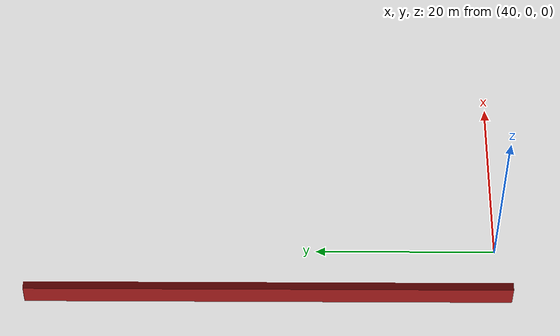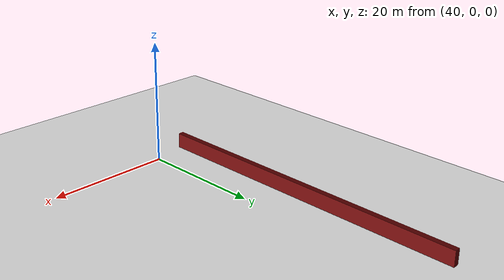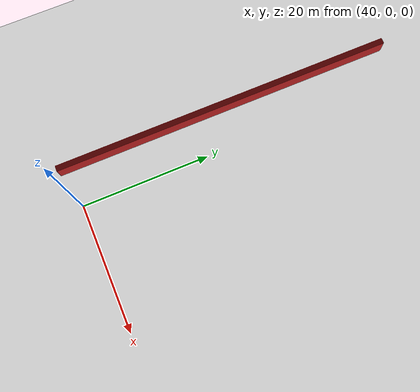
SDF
<sdf version="1.4">
 <world name="1_wall">
  <model name="ground_plane">
   <static>1</static>
   <link name="link">
    <collision name="collision">
     <geometry><plane><normal>0 0 1</normal><size>1000 1000</size></plane></geometry>
     <surface><friction><ode><mu>100</mu><mu2>50</mu2></ode></friction></surface>
    </collision>
    <visual name="visual">
     <cast_shadows>0</cast_shadows>
     <geometry><plane><normal>0 0 1</normal><size>10000 10000</size></plane></geometry>
     <material>
      <script><uri>file://media/materials/scripts/gazebo.material</uri><name>Gazebo/Grey</name></script>
     </material>
    </visual>
    <velocity_decay><linear>0</linear><angular>0</angular></velocity_decay>
   </link>
  </model>
  <model name="Wall_698">
   <static>1</static>
   <link name="Wall_698">
    <collision name="Wall_Collision_698">
     <geometry><box><size>53.65 0.05 2.5</size></box></geometry>
     <pose>0 0 1.25 0 -0 0</pose>
    </collision>
    <visual name="Wall_Visual_698">
     <pose>0 0 1.25 0 -0 0</pose>
     <geometry><box><size>53.65 0.05 2.5</size></box></geometry>
     <material>
      <script><uri>file://media/materials/scripts/gazebo.material</uri><name>Gazebo/Red</name></script>
     </material>
    </visual>
    <velocity_decay><linear>0</linear><angular>0</angular></velocity_decay>
    <pose>33.4 25.3 0 0 0 1.5707963267948966</pose>
   </link>
  </model>
  <model name="Wall_699">
   <static>1</static>
   <link name="Wall_699">
    <collision name="Wall_Collision_699">
     <geometry><box><size>53.65 0.05 2.5</size></box></geometry>
     <pose>0 0 1.25 0 -0 0</pose>
    </collision>
    <visual name="Wall_Visual_699">
     <pose>0 0 1.25 0 -0 0</pose>
     <geometry><box><size>53.65 0.05 2.5</size></box></geometry>
     <material>
      <script><uri>file://media/materials/scripts/gazebo.material</uri><name>Gazebo/Red</name></script>
     </material>
    </visual>
    <velocity_decay><linear>0</linear><angular>0</angular></velocity_decay>
    <pose>33.45 25.3 0 0 0 1.5707963267948966</pose>
   </link>
  </model>
  <model name="Wall_700">
   <static>1</static>
   <link name="Wall_700">
    <collision name="Wall_Collision_700">
     <geometry><box><size>53.65 0.05 2.5</size></box></geometry>
     <pose>0 0 1.25 0 -0 0</pose>
    </collision>
    <visual name="Wall_Visual_700">
     <pose>0 0 1.25 0 -0 0</pose>
     <geometry><box><size>53.65 0.05 2.5</size></box></geometry>
     <material>
      <script><uri>file://media/materials/scripts/gazebo.material</uri><name>Gazebo/Red</name></script>
     </material>
    </visual>
    <velocity_decay><linear>0</linear><angular>0</angular></velocity_decay>
    <pose>33.5 25.3 0 0 0 1.5707963267948966</pose>
   </link>
  </model>
  <model name="Wall_701">
   <static>1</static>
   <link name="Wall_701">
    <collision name="Wall_Collision_701">
     <geometry><box><size>53.65 0.05 2.5</size></box></geometry>
     <pose>0 0 1.25 0 -0 0</pose>
    </collision>
    <visual name="Wall_Visual_701">
     <pose>0 0 1.25 0 -0 0</pose>
     <geometry><box><size>53.65 0.05 2.5</size></box></geometry>
     <material>
      <script><uri>file://media/materials/scripts/gazebo.material</uri><name>Gazebo/Red</name></script>
     </material>
    </visual>
    <velocity_decay><linear>0</linear><angular>0</angular></velocity_decay>
    <pose>33.55 25.3 0 0 0 1.5707963267948966</pose>
   </link>
  </model>
  <model name="Wall_702">
   <static>1</static>
   <link name="Wall_702">
    <collision name="Wall_Collision_702">
     <geometry><box><size>53.65 0.05 2.5</size></box></geometry>
     <pose>0 0 1.25 0 -0 0</pose>
    </collision>
    <visual name="Wall_Visual_702">
     <pose>0 0 1.25 0 -0 0</pose>
     <geometry><box><size>53.65 0.05 2.5</size></box></geometry>
     <material>
      <script><uri>file://media/materials/scripts/gazebo.material</uri><name>Gazebo/Red</name></script>
     </material>
    </visual>
    <velocity_decay><linear>0</linear><angular>0</angular></velocity_decay>
    <pose>33.6 25.3 0 0 0 1.5707963267948966</pose>
   </link>
  </model>
  <model name="Wall_703">
   <static>1</static>
   <link name="Wall_703">
    <collision name="Wall_Collision_703">
     <geometry><box><size>53.65 0.05 2.5</size></box></geometry>
     <pose>0 0 1.25 0 -0 0</pose>
    </collision>
    <visual name="Wall_Visual_703">
     <pose>0 0 1.25 0 -0 0</pose>
     <geometry><box><size>53.65 0.05 2.5</size></box></geometry>
     <material>
      <script><uri>file://media/materials/scripts/gazebo.material</uri><name>Gazebo/Red</name></script>
     </material>
    </visual>
    <velocity_decay><linear>0</linear><angular>0</angular></velocity_decay>
    <pose>33.65 25.3 0 0 0 1.5707963267948966</pose>
   </link>
  </model>
  <model name="Wall_704">
   <static>1</static>
   <link name="Wall_704">
    <collision name="Wall_Collision_704">
     <geometry><box><size>53.65 0.05 2.5</size></box></geometry>
     <pose>0 0 1.25 0 -0 0</pose>
    </collision>
    <visual name="Wall_Visual_704">
     <pose>0 0 1.25 0 -0 0</pose>
     <geometry><box><size>53.65 0.05 2.5</size></box></geometry>
     <material>
      <script><uri>file://media/materials/scripts/gazebo.material</uri><name>Gazebo/Red</name></script>
     </material>
    </visual>
    <velocity_decay><linear>0</linear><angular>0</angular></velocity_decay>
    <pose>33.7 25.3 0 0 0 1.5707963267948966</pose>
   </link>
  </model>
  <model name="Wall_705">
   <static>1</static>
   <link name="Wall_705">
    <collision name="Wall_Collision_705">
     <geometry><box><size>53.65 0.05 2.5</size></box></geometry>
     <pose>0 0 1.25 0 -0 0</pose>
    </collision>
    <visual name="Wall_Visual_705">
     <pose>0 0 1.25 0 -0 0</pose>
     <geometry><box><size>53.65 0.05 2.5</size></box></geometry>
     <material>
      <script><uri>file://media/materials/scripts/gazebo.material</uri><name>Gazebo/Red</name></script>
     </material>
    </visual>
    <velocity_decay><linear>0</linear><angular>0</angular></velocity_decay>
    <pose>33.75 25.3 0 0 0 1.5707963267948966</pose>
   </link>
  </model>
  <model name="Wall_706">
   <static>1</static>
   <link name="Wall_706">
    <collision name="Wall_Collision_706">
     <geometry><box><size>53.65 0.05 2.5</size></box></geometry>
     <pose>0 0 1.25 0 -0 0</pose>
    </collision>
    <visual name="Wall_Visual_706">
     <pose>0 0 1.25 0 -0 0</pose>
     <geometry><box><size>53.65 0.05 2.5</size></box></geometry>
     <material>
      <script><uri>file://media/materials/scripts/gazebo.material</uri><name>Gazebo/Red</name></script>
     </material>
    </visual>
    <velocity_decay><linear>0</linear><angular>0</angular></velocity_decay>
    <pose>33.8 25.3 0 0 0 1.5707963267948966</pose>
   </link>
  </model>
  <model name="Wall_707">
   <static>1</static>
   <link name="Wall_707">
    <collision name="Wall_Collision_707">
     <geometry><box><size>53.65 0.05 2.5</size></box></geometry>
     <pose>0 0 1.25 0 -0 0</pose>
    </collision>
    <visual name="Wall_Visual_707">
     <pose>0 0 1.25 0 -0 0</pose>
     <geometry><box><size>53.65 0.05 2.5</size></box></geometry>
     <material>
      <script><uri>file://media/materials/scripts/gazebo.material</uri><name>Gazebo/Red</name></script>
     </material>
    </visual>
    <velocity_decay><linear>0</linear><angular>0</angular></velocity_decay>
    <pose>33.85 25.3 0 0 0 1.5707963267948966</pose>
   </link>
  </model>
  <model name="Wall_708">
   <static>1</static>
   <link name="Wall_708">
    <collision name="Wall_Collision_708">
     <geometry><box><size>53.65 0.05 2.5</size></box></geometry>
     <pose>0 0 1.25 0 -0 0</pose>
    </collision>
    <visual name="Wall_Visual_708">
     <pose>0 0 1.25 0 -0 0</pose>
     <geometry><box><size>53.65 0.05 2.5</size></box></geometry>
     <material>
      <script><uri>file://media/materials/scripts/gazebo.material</uri><name>Gazebo/Red</name></script>
     </material>
    </visual>
    <velocity_decay><linear>0</linear><angular>0</angular></velocity_decay>
    <pose>33.9 25.3 0 0 0 1.5707963267948966</pose>
   </link>
  </model>
  <model name="Wall_709">
   <static>1</static>
   <link name="Wall_709">
    <collision name="Wall_Collision_709">
     <geometry><box><size>53.65 0.05 2.5</size></box></geometry>
     <pose>0 0 1.25 0 -0 0</pose>
    </collision>
    <visual name="Wall_Visual_709">
     <pose>0 0 1.25 0 -0 0</pose>
     <geometry><box><size>53.65 0.05 2.5</size></box></geometry>
     <material>
      <script><uri>file://media/materials/scripts/gazebo.material</uri><name>Gazebo/Red</name></script>
     </material>
    </visual>
    <velocity_decay><linear>0</linear><angular>0</angular></velocity_decay>
    <pose>33.95 25.3 0 0 0 1.5707963267948966</pose>
   </link>
  </model>
  <model name="Wall_710">
   <static>1</static>
   <link name="Wall_710">
    <collision name="Wall_Collision_710">
     <geometry><box><size>53.65 0.05 2.5</size></box></geometry>
     <pose>0 0 1.25 0 -0 0</pose>
    </collision>
    <visual name="Wall_Visual_710">
     <pose>0 0 1.25 0 -0 0</pose>
     <geometry><box><size>53.65 0.05 2.5</size></box></geometry>
     <material>
      <script><uri>file://media/materials/scripts/gazebo.material</uri><name>Gazebo/Red</name></script>
     </material>
    </visual>
    <velocity_decay><linear>0</linear><angular>0</angular></velocity_decay>
    <pose>34.0 25.3 0 0 0 1.5707963267948966</pose>
   </link>
  </model>
  <model name="Wall_711">
   <static>1</static>
   <link name="Wall_711">
    <collision name="Wall_Collision_711">
     <geometry><box><size>53.65 0.05 2.5</size></box></geometry>
     <pose>0 0 1.25 0 -0 0</pose>
    </collision>
    <visual name="Wall_Visual_711">
     <pose>0 0 1.25 0 -0 0</pose>
     <geometry><box><size>53.65 0.05 2.5</size></box></geometry>
     <material>
      <script><uri>file://media/materials/scripts/gazebo.material</uri><name>Gazebo/Red</name></script>
     </material>
    </visual>
    <velocity_decay><linear>0</linear><angular>0</angular></velocity_decay>
    <pose>34.05 25.3 0 0 0 1.5707963267948966</pose>
   </link>
  </model>
  <model name="Wall_712">
   <static>1</static>
   <link name="Wall_712">
    <collision name="Wall_Collision_712">
     <geometry><box><size>53.65 0.05 2.5</size></box></geometry>
     <pose>0 0 1.25 0 -0 0</pose>
    </collision>
    <visual name="Wall_Visual_712">
     <pose>0 0 1.25 0 -0 0</pose>
     <geometry><box><size>53.65 0.05 2.5</size></box></geometry>
     <material>
      <script><uri>file://media/materials/scripts/gazebo.material</uri><name>Gazebo/Red</name></script>
     </material>
    </visual>
    <velocity_decay><linear>0</linear><angular>0</angular></velocity_decay>
    <pose>34.1 25.3 0 0 0 1.5707963267948966</pose>
   </link>
  </model>
  <model name="Wall_713">
   <static>1</static>
   <link name="Wall_713">
    <collision name="Wall_Collision_713">
     <geometry><box><size>53.65 0.05 2.5</size></box></geometry>
     <pose>0 0 1.25 0 -0 0</pose>
    </collision>
    <visual name="Wall_Visual_713">
     <pose>0 0 1.25 0 -0 0</pose>
     <geometry><box><size>53.65 0.05 2.5</size></box></geometry>
     <material>
      <script><uri>file://media/materials/scripts/gazebo.material</uri><name>Gazebo/Red</name></script>
     </material>
    </visual>
    <velocity_decay><linear>0</linear><angular>0</angular></velocity_decay>
    <pose>34.15 25.3 0 0 0 1.5707963267948966</pose>
   </link>
  </model>
  <model name="Wall_714">
   <static>1</static>
   <link name="Wall_714">
    <collision name="Wall_Collision_714">
     <geometry><box><size>53.65 0.05 2.5</size></box></geometry>
     <pose>0 0 1.25 0 -0 0</pose>
    </collision>
    <visual name="Wall_Visual_714">
     <pose>0 0 1.25 0 -0 0</pose>
     <geometry><box><size>53.65 0.05 2.5</size></box></geometry>
     <material>
      <script><uri>file://media/materials/scripts/gazebo.material</uri><name>Gazebo/Red</name></script>
     </material>
    </visual>
    <velocity_decay><linear>0</linear><angular>0</angular></velocity_decay>
    <pose>34.2 25.3 0 0 0 1.5707963267948966</pose>
   </link>
  </model>
  <model name="Wall_715">
   <static>1</static>
   <link name="Wall_715">
    <collision name="Wall_Collision_715">
     <geometry><box><size>53.65 0.05 2.5</size></box></geometry>
     <pose>0 0 1.25 0 -0 0</pose>
    </collision>
    <visual name="Wall_Visual_715">
     <pose>0 0 1.25 0 -0 0</pose>
     <geometry><box><size>53.65 0.05 2.5</size></box></geometry>
     <material>
      <script><uri>file://media/materials/scripts/gazebo.material</uri><name>Gazebo/Red</name></script>
     </material>
    </visual>
    <velocity_decay><linear>0</linear><angular>0</angular></velocity_decay>
    <pose>34.25 25.3 0 0 0 1.5707963267948966</pose>
   </link>
  </model>
 </world>
</sdf>
